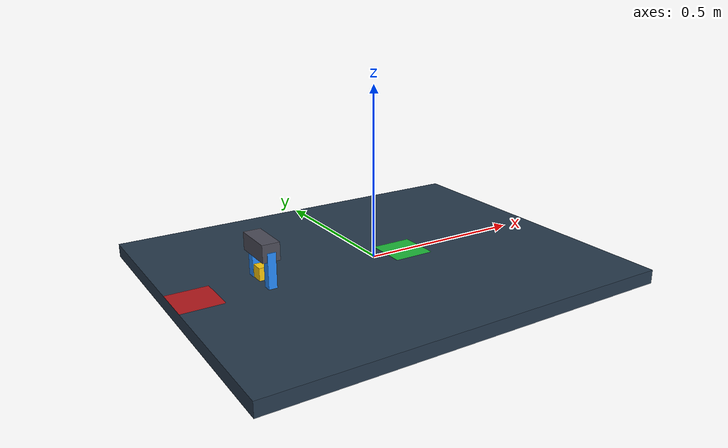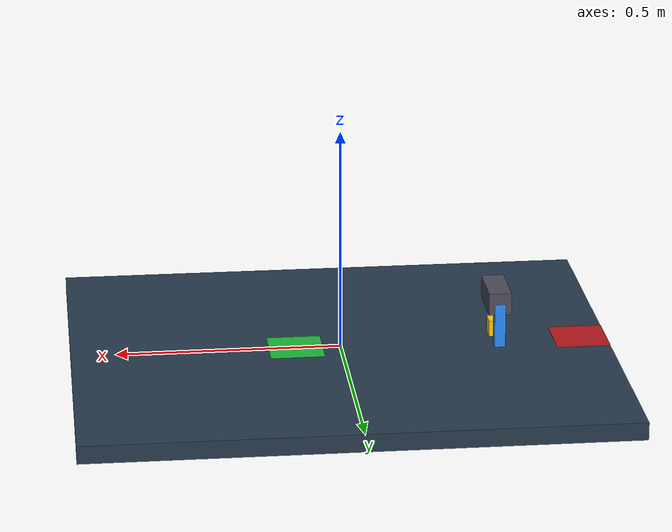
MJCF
<mujoco model="verified_tactile_triage_cell">
  <compiler angle="radian" />
  <option timestep="0.001" gravity="0 0 -9.81" integrator="implicitfast"
    cone="elliptic" solver="Newton" tolerance="1e-10" impratio="10" noslip_iterations="0" />

  <default>
    <geom friction="1.2 0.01 0.0001" />
    <joint damping="2.0" />
  </default>

  <asset>
    <texture type="2d" name="grid" builtin="checker" rgb1="0.2 0.3 0.4" rgb2="0.1 0.15 0.2"
      width="512" height="512" />
    <material name="table_mat" texture="grid" texrepeat="4 4" reflectance="0.05" />
  </asset>

  <worldbody>
    <light pos="0 0 2.5" dir="0 0 -1" diffuse="1 1 1" specular="0.2 0.2 0.2" />
    <camera name="topdown" pos="0 0 1.8" euler="0 0 0" fovy="55" />
    <camera name="angled" pos="-0.8 -1.0 1.0" xyaxes="0.8 -0.6 0  0.3 0.5 0.8" />

    <!-- Table surface -->
    <geom name="table" type="box" size="0.6 0.5 0.02" pos="0 0 -0.02" material="table_mat"
      contype="1" conaffinity="8" />

    <geom name="triage_safe_zone" type="box" size="0.06 0.06 0.001" pos="0.1 0.0 0.0011"
      rgba="0.15 0.95 0.25 0.75" contype="0" conaffinity="0" />

    <geom name="contaminated_zone" type="box" size="0.06 0.06 0.001" pos="-0.54 0.0 0.0011"
      rgba="0.95 0.1 0.1 0.75" contype="0" conaffinity="0" />

    <!-- Wrist: translates in x (horizontal), z (vertical), and yaw (lateral
         alignment about z-axis). Carries the two-finger gripper. -->
    <body name="wrist" pos="-0.35 0.0 0.1078">
      <joint name="wrist_x" type="slide" axis="1 0 0" range="-0.5 0.6" damping="6.0" />
      <joint name="wrist_z" type="slide" axis="0 0 1" range="-0.05 0.4" damping="6.0" />
      <joint name="wrist_yaw" type="hinge" axis="0 0 1" range="-0.6 0.6" damping="2.0" />
      <geom name="wrist_body_geom" type="box" size="0.025 0.06 0.025" rgba="0.3 0.3 0.35 1"
        mass="0.5" contype="2" conaffinity="0" />

      <!-- Left finger: single closing joint (slide, moves inward/outward in
           local y), Phase 1 scope is single-joint-per-finger only. -->
      <body name="left_finger" pos="0 0.05 -0.05">
        <joint name="left_finger_close" type="slide" axis="0 1 0" range="-0.058 0.0"
          damping="3.0" />
        <geom name="left_finger_geom" type="box" size="0.012 0.012 0.05" rgba="0.15 0.55 1.0 1"
          mass="0.05" contype="4" conaffinity="8" friction="0.9 0.01 0.0001" />
        <site name="left_fingertip_site" type="box" size="0.016 0.016 0.052" pos="0 0 0"
          rgba="0 0 0 0" />
      </body>

      <!-- Right finger: mirrored, single closing joint. -->
      <body name="right_finger" pos="0 -0.05 -0.05">
        <joint name="right_finger_close" type="slide" axis="0 1 0" range="0.0 0.058"
          damping="3.0" />
        <geom name="right_finger_geom" type="box" size="0.012 0.012 0.05" rgba="0.15 0.55 1.0 1"
          mass="0.05" contype="4" conaffinity="8" friction="0.9 0.01 0.0001" />
        <site name="right_fingertip_site" type="box" size="0.016 0.016 0.052" pos="0 0 0"
          rgba="0 0 0 0" />
      </body>
    </body>

    <!-- Payload: free body, the object to be triaged. -->
    <body name="payload" pos="-0.35 0.0 0.035">
      <joint name="payload_free" type="free" />
      <geom name="payload_geom" type="box" size="0.018 0.018 0.018" rgba="1.0 0.8 0.05 1"
        mass="0.05" contype="8" conaffinity="5" friction="0.9 0.01 0.0001" />
    </body>
  </worldbody>

  <actuator>
    <position name="act_wrist_x" joint="wrist_x" kp="300" />
    <position name="act_wrist_z" joint="wrist_z" kp="2500" />
    <position name="act_wrist_yaw" joint="wrist_yaw" kp="2000" />
    <position name="act_left_finger" joint="left_finger_close" kp="80" />
    <position name="act_right_finger" joint="right_finger_close" kp="80" />
  </actuator>

  <!-- Passive telemetry sensors: fingertip touch (contact force magnitude)
       and payload position/velocity tracking. Read-only, no effect on
       control or dynamics. -->
  <sensor>
    <touch name="left_fingertip_touch" site="left_fingertip_site" />
    <touch name="right_fingertip_touch" site="right_fingertip_site" />
    <framepos name="payload_pos" objtype="body" objname="payload" />
    <framelinvel name="payload_vel" objtype="body" objname="payload" />
  </sensor>
</mujoco>
